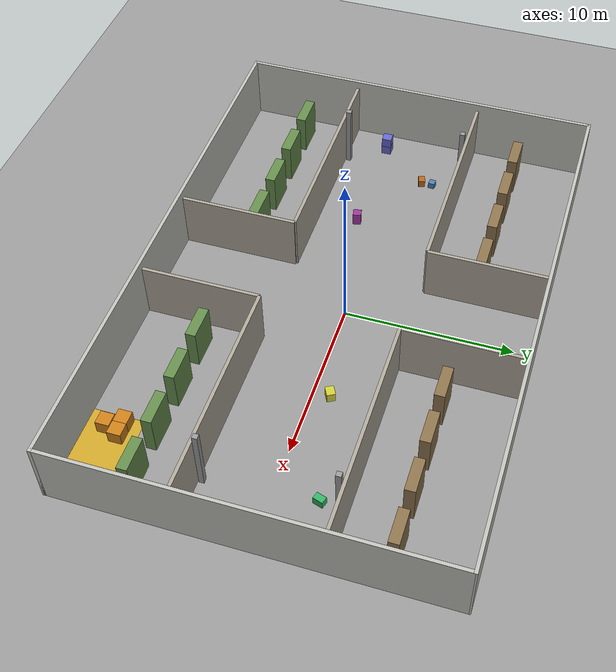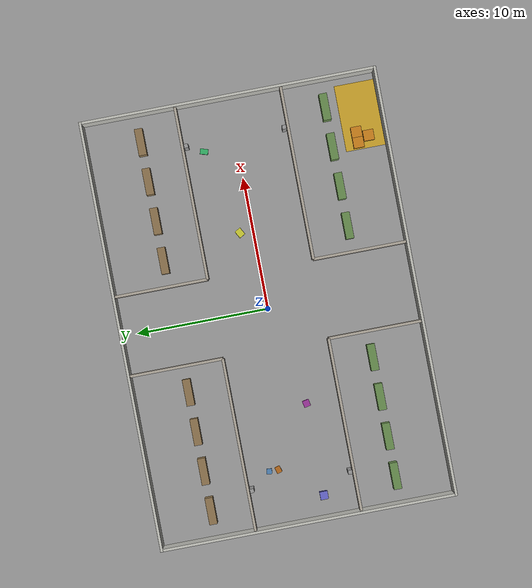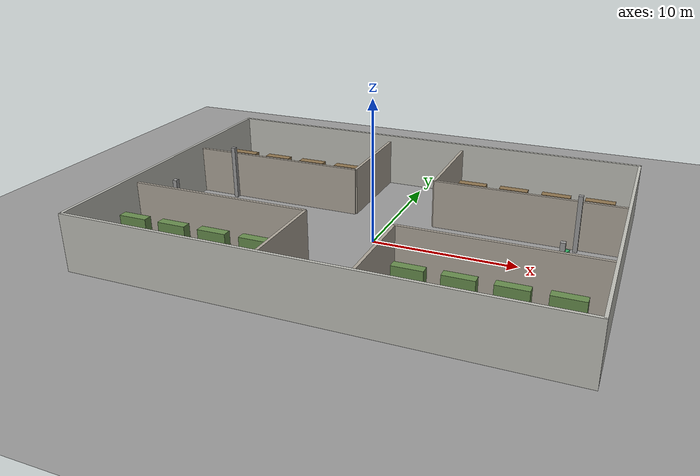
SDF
<?xml version="1.0" ?>
<sdf version="1.9">
  <world name="warehouse">

    <!-- ============================================================
         WORLD PLUGINS
         ============================================================ -->
    <plugin filename="gz-sim-physics-system"
            name="gz::sim::systems::Physics"/>

    <plugin filename="gz-sim-user-commands-system"
            name="gz::sim::systems::UserCommands"/>

    <plugin filename="gz-sim-scene-broadcaster-system"
            name="gz::sim::systems::SceneBroadcaster"/>

    <plugin filename="gz-sim-contact-system"
            name="gz::sim::systems::Contact"/>

    <plugin filename="gz-sim-sensors-system"
            name="gz::sim::systems::Sensors">
      <render_engine>ogre2</render_engine>
    </plugin>

    <plugin filename="gz-sim-imu-system"
            name="gz::sim::systems::Imu"/>

    <plugin filename="gz-sim-navsat-system"
            name="gz::sim::systems::NavSat"/>

    <!-- ============================================================
         PHYSICS CONFIGURATION
         ============================================================ -->
    <physics name="1ms" type="ignored">
      <max_step_size>0.001</max_step_size>
      <real_time_factor>1.0</real_time_factor>
      <real_time_update_rate>1000</real_time_update_rate>
    </physics>

    <!-- ============================================================
         SCENE (lighting and sky)
         ============================================================ -->
    <scene>
      <ambient>0.6 0.6 0.6 1.0</ambient>
      <background>0.4 0.4 0.4 1.0</background>
      <grid>false</grid>
      <origin_visual>false</origin_visual>
    </scene>

    <!-- Main directional light (simulates warehouse fluorescent ceiling) -->
    <light name="ceiling_light_main" type="directional">
      <pose>0 0 15 0 0.3 0</pose>
      <diffuse>0.9 0.9 0.85 1</diffuse>
      <specular>0.3 0.3 0.3 1</specular>
      <direction>0.1 0.1 -1</direction>
      <cast_shadows>false</cast_shadows>
    </light>

    <!-- Ambient fill light -->
    <light name="fill_light" type="directional">
      <pose>0 0 10 0 -0.3 0</pose>
      <diffuse>0.4 0.4 0.4 1</diffuse>
      <specular>0.1 0.1 0.1 1</specular>
      <direction>-0.1 -0.1 -1</direction>
      <cast_shadows>false</cast_shadows>
    </light>

    <!-- ============================================================
         GROUND PLANE (concrete warehouse floor)
         ============================================================ -->
    <model name="ground_plane">
      <static>true</static>
      <link name="link">
        <collision name="collision">
          <geometry>
            <plane>
              <normal>0 0 1</normal>
              <size>50 50</size>
            </plane>
          </geometry>
          <surface>
            <friction>
              <ode>
                <mu>0.8</mu>
                <mu2>0.8</mu2>
              </ode>
            </friction>
          </surface>
        </collision>
        <visual name="visual">
          <geometry>
            <plane>
              <normal>0 0 1</normal>
              <size>50 50</size>
            </plane>
          </geometry>
          <material>
            <ambient>0.5 0.5 0.5 1</ambient>
            <diffuse>0.6 0.6 0.6 1</diffuse>
            <specular>0.1 0.1 0.1 1</specular>
          </material>
        </visual>
      </link>
    </model>

    <!-- NORTH WALL: Y = +11.1 -->
    <model name="wall_north">
      <static>true</static>
      <pose>0 11.1 0 0 0 0</pose>
      <link name="link">
        <collision name="col">
          <geometry><box><size>32.4 0.2 4.0</size></box></geometry>
        </collision>
        <visual name="vis">
          <geometry><box><size>32.4 0.2 4.0</size></box></geometry>
          <material>
            <ambient>0.75 0.75 0.72 1</ambient>
            <diffuse>0.75 0.75 0.72 1</diffuse>
          </material>
          <pose>0 0 2.0 0 0 0</pose>
        </visual>
      </link>
    </model>

    <!-- SOUTH WALL: Y = -11.1 -->
    <model name="wall_south">
      <static>true</static>
      <pose>0 -11.1 0 0 0 0</pose>
      <link name="link">
        <collision name="col">
          <geometry><box><size>32.4 0.2 4.0</size></box></geometry>
        </collision>
        <visual name="vis">
          <geometry><box><size>32.4 0.2 4.0</size></box></geometry>
          <material>
            <ambient>0.75 0.75 0.72 1</ambient>
            <diffuse>0.75 0.75 0.72 1</diffuse>
          </material>
          <pose>0 0 2.0 0 0 0</pose>
        </visual>
      </link>
    </model>

    <!-- WEST WALL: X = -16.1 -->
    <model name="wall_west">
      <static>true</static>
      <pose>-16.1 0 0 0 0 0</pose>
      <link name="link">
        <collision name="col">
          <geometry><box><size>0.2 22.2 4.0</size></box></geometry>
        </collision>
        <visual name="vis">
          <geometry><box><size>0.2 22.2 4.0</size></box></geometry>
          <material>
            <ambient>0.75 0.75 0.72 1</ambient>
            <diffuse>0.75 0.75 0.72 1</diffuse>
          </material>
          <pose>0 0 2.0 0 0 0</pose>
        </visual>
      </link>
    </model>

    <!-- EAST WALL: X = +16.1 -->
    <model name="wall_east">
      <static>true</static>
      <pose>16.1 0 0 0 0 0</pose>
      <link name="link">
        <collision name="col">
          <geometry><box><size>0.2 22.2 4.0</size></box></geometry>
        </collision>
        <visual name="vis">
          <geometry><box><size>0.2 22.2 4.0</size></box></geometry>
          <material>
            <ambient>0.75 0.75 0.72 1</ambient>
            <diffuse>0.75 0.75 0.72 1</diffuse>
          </material>
          <pose>0 0 2.0 0 0 0</pose>
        </visual>
      </link>
    </model>

    <!-- Central dividing wall NORTH (creates main E-W corridor gap) -->
    <!-- Wall segment: West portion X=-16 to X=-3 at Y=+4 -->
    <model name="interior_wall_n1_west">
      <static>true</static>
      <pose>-9.5 4.0 0 0 0 0</pose>
      <link name="link">
        <collision name="col">
          <geometry><box><size>13.0 0.2 3.5</size></box></geometry>
        </collision>
        <visual name="vis">
          <geometry><box><size>13.0 0.2 3.5</size></box></geometry>
          <material><ambient>0.68 0.65 0.60 1</ambient><diffuse>0.68 0.65 0.60 1</diffuse></material>
          <pose>0 0 1.75 0 0 0</pose>
        </visual>
      </link>
    </model>

    <!-- Wall segment: East portion X=+3 to X=+16 at Y=+4 -->
    <model name="interior_wall_n1_east">
      <static>true</static>
      <pose>9.5 4.0 0 0 0 0</pose>
      <link name="link">
        <collision name="col">
          <geometry><box><size>13.0 0.2 3.5</size></box></geometry>
        </collision>
        <visual name="vis">
          <geometry><box><size>13.0 0.2 3.5</size></box></geometry>
          <material><ambient>0.68 0.65 0.60 1</ambient><diffuse>0.68 0.65 0.60 1</diffuse></material>
          <pose>0 0 1.75 0 0 0</pose>
        </visual>
      </link>
    </model>

    <!-- Central dividing wall SOUTH at Y=-4 -->
    <model name="interior_wall_s1_west">
      <static>true</static>
      <pose>-9.5 -4.0 0 0 0 0</pose>
      <link name="link">
        <collision name="col">
          <geometry><box><size>13.0 0.2 3.5</size></box></geometry>
        </collision>
        <visual name="vis">
          <geometry><box><size>13.0 0.2 3.5</size></box></geometry>
          <material><ambient>0.68 0.65 0.60 1</ambient><diffuse>0.68 0.65 0.60 1</diffuse></material>
          <pose>0 0 1.75 0 0 0</pose>
        </visual>
      </link>
    </model>

    <model name="interior_wall_s1_east">
      <static>true</static>
      <pose>9.5 -4.0 0 0 0 0</pose>
      <link name="link">
        <collision name="col">
          <geometry><box><size>13.0 0.2 3.5</size></box></geometry>
        </collision>
        <visual name="vis">
          <geometry><box><size>13.0 0.2 3.5</size></box></geometry>
          <material><ambient>0.68 0.65 0.60 1</ambient><diffuse>0.68 0.65 0.60 1</diffuse></material>
          <pose>0 0 1.75 0 0 0</pose>
        </visual>
      </link>
    </model>

    <!-- North-South cross-corridor wall (creates T-intersection) -->
    <!-- West segment: Y=+4 to Y=+11 at X=-3 (gap for corridor) -->
    <model name="interior_wall_ns1_nw">
      <static>true</static>
      <pose>-3.0 7.5 0 0 0 0</pose>
      <link name="link">
        <collision name="col">
          <geometry><box><size>0.2 7.0 3.5</size></box></geometry>
        </collision>
        <visual name="vis">
          <geometry><box><size>0.2 7.0 3.5</size></box></geometry>
          <material><ambient>0.68 0.65 0.60 1</ambient><diffuse>0.68 0.65 0.60 1</diffuse></material>
          <pose>0 0 1.75 0 0 0</pose>
        </visual>
      </link>
    </model>

    <!-- East segment at X=+3 -->
    <model name="interior_wall_ns1_ne">
      <static>true</static>
      <pose>3.0 7.5 0 0 0 0</pose>
      <link name="link">
        <collision name="col">
          <geometry><box><size>0.2 7.0 3.5</size></box></geometry>
        </collision>
        <visual name="vis">
          <geometry><box><size>0.2 7.0 3.5</size></box></geometry>
          <material><ambient>0.68 0.65 0.60 1</ambient><diffuse>0.68 0.65 0.60 1</diffuse></material>
          <pose>0 0 1.75 0 0 0</pose>
        </visual>
      </link>
    </model>

    <!-- South NS walls -->
    <model name="interior_wall_ns1_sw">
      <static>true</static>
      <pose>-3.0 -7.5 0 0 0 0</pose>
      <link name="link">
        <collision name="col">
          <geometry><box><size>0.2 7.0 3.5</size></box></geometry>
        </collision>
        <visual name="vis">
          <geometry><box><size>0.2 7.0 3.5</size></box></geometry>
          <material><ambient>0.68 0.65 0.60 1</ambient><diffuse>0.68 0.65 0.60 1</diffuse></material>
          <pose>0 0 1.75 0 0 0</pose>
        </visual>
      </link>
    </model>

    <model name="interior_wall_ns1_se">
      <static>true</static>
      <pose>3.0 -7.5 0 0 0 0</pose>
      <link name="link">
        <collision name="col">
          <geometry><box><size>0.2 7.0 3.5</size></box></geometry>
        </collision>
        <visual name="vis">
          <geometry><box><size>0.2 7.0 3.5</size></box></geometry>
          <material><ambient>0.68 0.65 0.60 1</ambient><diffuse>0.68 0.65 0.60 1</diffuse></material>
          <pose>0 0 1.75 0 0 0</pose>
        </visual>
      </link>
    </model>

    <!-- RACK ROW 1: North zone, behind Y=+4 wall -->
    <!-- Rack positions: X = -14, -11, -8, -5 (west section) -->
    <model name="rack_n1">
      <static>true</static>
      <pose>-14.0 7.0 0 0 0 0</pose>
      <link name="link">
        <collision name="col"><geometry><box><size>2.0 0.6 2.5</size></box></geometry></collision>
        <visual name="vis">
          <geometry><box><size>2.0 0.6 2.5</size></box></geometry>
          <material><ambient>0.55 0.45 0.30 1</ambient><diffuse>0.55 0.45 0.30 1</diffuse></material>
          <pose>0 0 1.25 0 0 0</pose>
        </visual>
      </link>
    </model>

    <model name="rack_n2">
      <static>true</static>
      <pose>-11.0 7.0 0 0 0 0</pose>
      <link name="link">
        <collision name="col"><geometry><box><size>2.0 0.6 2.5</size></box></geometry></collision>
        <visual name="vis">
          <geometry><box><size>2.0 0.6 2.5</size></box></geometry>
          <material><ambient>0.55 0.45 0.30 1</ambient><diffuse>0.55 0.45 0.30 1</diffuse></material>
          <pose>0 0 1.25 0 0 0</pose>
        </visual>
      </link>
    </model>

    <model name="rack_n3">
      <static>true</static>
      <pose>-8.0 7.0 0 0 0 0</pose>
      <link name="link">
        <collision name="col"><geometry><box><size>2.0 0.6 2.5</size></box></geometry></collision>
        <visual name="vis">
          <geometry><box><size>2.0 0.6 2.5</size></box></geometry>
          <material><ambient>0.55 0.45 0.30 1</ambient><diffuse>0.55 0.45 0.30 1</diffuse></material>
          <pose>0 0 1.25 0 0 0</pose>
        </visual>
      </link>
    </model>

    <model name="rack_n4">
      <static>true</static>
      <pose>-5.0 7.0 0 0 0 0</pose>
      <link name="link">
        <collision name="col"><geometry><box><size>2.0 0.6 2.5</size></box></geometry></collision>
        <visual name="vis">
          <geometry><box><size>2.0 0.6 2.5</size></box></geometry>
          <material><ambient>0.55 0.45 0.30 1</ambient><diffuse>0.55 0.45 0.30 1</diffuse></material>
          <pose>0 0 1.25 0 0 0</pose>
        </visual>
      </link>
    </model>

    <!-- East section racks (X = +5, +8, +11, +14) -->
    <model name="rack_n5">
      <static>true</static>
      <pose>5.0 7.0 0 0 0 0</pose>
      <link name="link">
        <collision name="col"><geometry><box><size>2.0 0.6 2.5</size></box></geometry></collision>
        <visual name="vis">
          <geometry><box><size>2.0 0.6 2.5</size></box></geometry>
          <material><ambient>0.55 0.45 0.30 1</ambient><diffuse>0.55 0.45 0.30 1</diffuse></material>
          <pose>0 0 1.25 0 0 0</pose>
        </visual>
      </link>
    </model>

    <model name="rack_n6">
      <static>true</static>
      <pose>8.0 7.0 0 0 0 0</pose>
      <link name="link">
        <collision name="col"><geometry><box><size>2.0 0.6 2.5</size></box></geometry></collision>
        <visual name="vis">
          <geometry><box><size>2.0 0.6 2.5</size></box></geometry>
          <material><ambient>0.55 0.45 0.30 1</ambient><diffuse>0.55 0.45 0.30 1</diffuse></material>
          <pose>0 0 1.25 0 0 0</pose>
        </visual>
      </link>
    </model>

    <model name="rack_n7">
      <static>true</static>
      <pose>11.0 7.0 0 0 0 0</pose>
      <link name="link">
        <collision name="col"><geometry><box><size>2.0 0.6 2.5</size></box></geometry></collision>
        <visual name="vis">
          <geometry><box><size>2.0 0.6 2.5</size></box></geometry>
          <material><ambient>0.55 0.45 0.30 1</ambient><diffuse>0.55 0.45 0.30 1</diffuse></material>
          <pose>0 0 1.25 0 0 0</pose>
        </visual>
      </link>
    </model>

    <model name="rack_n8">
      <static>true</static>
      <pose>14.0 7.0 0 0 0 0</pose>
      <link name="link">
        <collision name="col"><geometry><box><size>2.0 0.6 2.5</size></box></geometry></collision>
        <visual name="vis">
          <geometry><box><size>2.0 0.6 2.5</size></box></geometry>
          <material><ambient>0.55 0.45 0.30 1</ambient><diffuse>0.55 0.45 0.30 1</diffuse></material>
          <pose>0 0 1.25 0 0 0</pose>
        </visual>
      </link>
    </model>

    <!-- RACK ROW 2: South zone, behind Y=-4 wall -->
    <model name="rack_s1">
      <static>true</static>
      <pose>-14.0 -7.0 0 0 0 0</pose>
      <link name="link">
        <collision name="col"><geometry><box><size>2.0 0.6 2.5</size></box></geometry></collision>
        <visual name="vis">
          <geometry><box><size>2.0 0.6 2.5</size></box></geometry>
          <material><ambient>0.40 0.55 0.30 1</ambient><diffuse>0.40 0.55 0.30 1</diffuse></material>
          <pose>0 0 1.25 0 0 0</pose>
        </visual>
      </link>
    </model>

    <model name="rack_s2">
      <static>true</static>
      <pose>-11.0 -7.0 0 0 0 0</pose>
      <link name="link">
        <collision name="col"><geometry><box><size>2.0 0.6 2.5</size></box></geometry></collision>
        <visual name="vis">
          <geometry><box><size>2.0 0.6 2.5</size></box></geometry>
          <material><ambient>0.40 0.55 0.30 1</ambient><diffuse>0.40 0.55 0.30 1</diffuse></material>
          <pose>0 0 1.25 0 0 0</pose>
        </visual>
      </link>
    </model>

    <model name="rack_s3">
      <static>true</static>
      <pose>-8.0 -7.0 0 0 0 0</pose>
      <link name="link">
        <collision name="col"><geometry><box><size>2.0 0.6 2.5</size></box></geometry></collision>
        <visual name="vis">
          <geometry><box><size>2.0 0.6 2.5</size></box></geometry>
          <material><ambient>0.40 0.55 0.30 1</ambient><diffuse>0.40 0.55 0.30 1</diffuse></material>
          <pose>0 0 1.25 0 0 0</pose>
        </visual>
      </link>
    </model>

    <model name="rack_s4">
      <static>true</static>
      <pose>-5.0 -7.0 0 0 0 0</pose>
      <link name="link">
        <collision name="col"><geometry><box><size>2.0 0.6 2.5</size></box></geometry></collision>
        <visual name="vis">
          <geometry><box><size>2.0 0.6 2.5</size></box></geometry>
          <material><ambient>0.40 0.55 0.30 1</ambient><diffuse>0.40 0.55 0.30 1</diffuse></material>
          <pose>0 0 1.25 0 0 0</pose>
        </visual>
      </link>
    </model>

    <model name="rack_s5">
      <static>true</static>
      <pose>5.0 -7.0 0 0 0 0</pose>
      <link name="link">
        <collision name="col"><geometry><box><size>2.0 0.6 2.5</size></box></geometry></collision>
        <visual name="vis">
          <geometry><box><size>2.0 0.6 2.5</size></box></geometry>
          <material><ambient>0.40 0.55 0.30 1</ambient><diffuse>0.40 0.55 0.30 1</diffuse></material>
          <pose>0 0 1.25 0 0 0</pose>
        </visual>
      </link>
    </model>

    <model name="rack_s6">
      <static>true</static>
      <pose>8.0 -7.0 0 0 0 0</pose>
      <link name="link">
        <collision name="col"><geometry><box><size>2.0 0.6 2.5</size></box></geometry></collision>
        <visual name="vis">
          <geometry><box><size>2.0 0.6 2.5</size></box></geometry>
          <material><ambient>0.40 0.55 0.30 1</ambient><diffuse>0.40 0.55 0.30 1</diffuse></material>
          <pose>0 0 1.25 0 0 0</pose>
        </visual>
      </link>
    </model>

    <model name="rack_s7">
      <static>true</static>
      <pose>11.0 -7.0 0 0 0 0</pose>
      <link name="link">
        <collision name="col"><geometry><box><size>2.0 0.6 2.5</size></box></geometry></collision>
        <visual name="vis">
          <geometry><box><size>2.0 0.6 2.5</size></box></geometry>
          <material><ambient>0.40 0.55 0.30 1</ambient><diffuse>0.40 0.55 0.30 1</diffuse></material>
          <pose>0 0 1.25 0 0 0</pose>
        </visual>
      </link>
    </model>

    <model name="rack_s8">
      <static>true</static>
      <pose>14.0 -7.0 0 0 0 0</pose>
      <link name="link">
        <collision name="col"><geometry><box><size>2.0 0.6 2.5</size></box></geometry></collision>
        <visual name="vis">
          <geometry><box><size>2.0 0.6 2.5</size></box></geometry>
          <material><ambient>0.40 0.55 0.30 1</ambient><diffuse>0.40 0.55 0.30 1</diffuse></material>
          <pose>0 0 1.25 0 0 0</pose>
        </visual>
      </link>
    </model>

    <model name="loading_zone_marker">
      <static>true</static>
      <pose>13.0 -9.5 0.005 0 0 0</pose>
      <link name="link">
        <visual name="vis">
          <geometry><box><size>5.0 3.0 0.01</size></box></geometry>
          <material>
            <ambient>0.9 0.7 0.1 0.8</ambient>
            <diffuse>0.9 0.7 0.1 0.8</diffuse>
          </material>
        </visual>
      </link>
    </model>

    <!-- Box cluster 1: main corridor -->
    <model name="box_1">
      <static>true</static>
      <pose>-12.0 1.5 0 0 0 0.3</pose>
      <link name="link">
        <collision name="col"><geometry><box><size>0.5 0.4 0.5</size></box></geometry></collision>
        <visual name="vis">
          <geometry><box><size>0.5 0.4 0.5</size></box></geometry>
          <material><ambient>0.7 0.4 0.1 1</ambient><diffuse>0.7 0.4 0.1 1</diffuse></material>
          <pose>0 0 0.25 0 0 0</pose>
        </visual>
      </link>
    </model>

    <model name="box_2">
      <static>true</static>
      <pose>-12.0 2.2 0 0 0 -0.1</pose>
      <link name="link">
        <collision name="col"><geometry><box><size>0.4 0.4 0.4</size></box></geometry></collision>
        <visual name="vis">
          <geometry><box><size>0.4 0.4 0.4</size></box></geometry>
          <material><ambient>0.3 0.5 0.7 1</ambient><diffuse>0.3 0.5 0.7 1</diffuse></material>
          <pose>0 0 0.2 0 0 0</pose>
        </visual>
      </link>
    </model>

    <model name="box_3">
      <static>true</static>
      <pose>6.0 1.0 0 0 0 0.5</pose>
      <link name="link">
        <collision name="col"><geometry><box><size>0.6 0.5 0.6</size></box></geometry></collision>
        <visual name="vis">
          <geometry><box><size>0.6 0.5 0.6</size></box></geometry>
          <material><ambient>0.8 0.8 0.2 1</ambient><diffuse>0.8 0.8 0.2 1</diffuse></material>
          <pose>0 0 0.3 0 0 0</pose>
        </visual>
      </link>
    </model>

    <model name="box_4">
      <static>true</static>
      <pose>-7.5 -1.5 0 0 0 0.2</pose>
      <link name="link">
        <collision name="col"><geometry><box><size>0.5 0.5 0.8</size></box></geometry></collision>
        <visual name="vis">
          <geometry><box><size>0.5 0.5 0.8</size></box></geometry>
          <material><ambient>0.6 0.2 0.6 1</ambient><diffuse>0.6 0.2 0.6 1</diffuse></material>
          <pose>0 0 0.4 0 0 0</pose>
        </visual>
      </link>
    </model>

    <model name="box_5">
      <static>true</static>
      <pose>12.5 2.5 0 0 0 -0.3</pose>
      <link name="link">
        <collision name="col"><geometry><box><size>0.4 0.6 0.5</size></box></geometry></collision>
        <visual name="vis">
          <geometry><box><size>0.4 0.6 0.5</size></box></geometry>
          <material><ambient>0.2 0.7 0.4 1</ambient><diffuse>0.2 0.7 0.4 1</diffuse></material>
          <pose>0 0 0.25 0 0 0</pose>
        </visual>
      </link>
    </model>

    <!-- Box cluster in loading zone -->
    <model name="box_6">
      <static>true</static>
      <pose>11.0 -9.0 0 0 0 0</pose>
      <link name="link">
        <collision name="col"><geometry><box><size>0.8 0.8 0.8</size></box></geometry></collision>
        <visual name="vis">
          <geometry><box><size>0.8 0.8 0.8</size></box></geometry>
          <material><ambient>0.8 0.5 0.1 1</ambient><diffuse>0.8 0.5 0.1 1</diffuse></material>
          <pose>0 0 0.4 0 0 0</pose>
        </visual>
      </link>
    </model>

    <model name="box_7">
      <static>true</static>
      <pose>11.8 -9.0 0 0 0 0</pose>
      <link name="link">
        <collision name="col"><geometry><box><size>0.8 0.8 0.8</size></box></geometry></collision>
        <visual name="vis">
          <geometry><box><size>0.8 0.8 0.8</size></box></geometry>
          <material><ambient>0.8 0.5 0.1 1</ambient><diffuse>0.8 0.5 0.1 1</diffuse></material>
          <pose>0 0 0.4 0 0 0</pose>
        </visual>
      </link>
    </model>

    <model name="box_8">
      <static>true</static>
      <pose>11.4 -9.85 0 0 0 0</pose>
      <link name="link">
        <collision name="col"><geometry><box><size>0.8 0.8 0.8</size></box></geometry></collision>
        <visual name="vis">
          <geometry><box><size>0.8 0.8 0.8</size></box></geometry>
          <material><ambient>0.8 0.5 0.1 1</ambient><diffuse>0.8 0.5 0.1 1</diffuse></material>
          <pose>0 0 0.4 0 0 0</pose>
        </visual>
      </link>
    </model>

    <!-- Stacked boxes (tall stack) -->
    <model name="box_stack_bottom">
      <static>true</static>
      <pose>-14.5 -1.5 0 0 0 0</pose>
      <link name="link">
        <collision name="col"><geometry><box><size>0.6 0.6 0.6</size></box></geometry></collision>
        <visual name="vis">
          <geometry><box><size>0.6 0.6 0.6</size></box></geometry>
          <material><ambient>0.4 0.4 0.8 1</ambient><diffuse>0.4 0.4 0.8 1</diffuse></material>
          <pose>0 0 0.3 0 0 0</pose>
        </visual>
      </link>
    </model>

    <model name="box_stack_top">
      <static>true</static>
      <pose>-14.5 -1.5 0.6 0 0 0</pose>
      <link name="link">
        <collision name="col"><geometry><box><size>0.6 0.6 0.6</size></box></geometry></collision>
        <visual name="vis">
          <geometry><box><size>0.6 0.6 0.6</size></box></geometry>
          <material><ambient>0.4 0.4 0.8 1</ambient><diffuse>0.4 0.4 0.8 1</diffuse></material>
          <pose>0 0 0.3 0 0 0</pose>
        </visual>
      </link>
    </model>

    <model name="pillar_nw">
      <static>true</static>
      <pose>-13.0 3.7 0 0 0 0</pose>
      <link name="link">
        <collision name="col"><geometry><box><size>0.3 0.3 4.0</size></box></geometry></collision>
        <visual name="vis">
          <geometry><box><size>0.3 0.3 4.0</size></box></geometry>
          <material><ambient>0.6 0.6 0.6 1</ambient><diffuse>0.6 0.6 0.6 1</diffuse></material>
          <pose>0 0 2.0 0 0 0</pose>
        </visual>
      </link>
    </model>

    <model name="pillar_ne">
      <static>true</static>
      <pose>13.0 3.7 0 0 0 0</pose>
      <link name="link">
        <collision name="col"><geometry><box><size>0.3 0.3 4.0</size></box></geometry></collision>
        <visual name="vis">
          <geometry><box><size>0.3 0.3 4.0</size></box></geometry>
          <material><ambient>0.6 0.6 0.6 1</ambient><diffuse>0.6 0.6 0.6 1</diffuse></material>
          <pose>0 0 2.0 0 0 0</pose>
        </visual>
      </link>
    </model>

    <model name="pillar_sw">
      <static>true</static>
      <pose>-13.0 -3.7 0 0 0 0</pose>
      <link name="link">
        <collision name="col"><geometry><box><size>0.3 0.3 4.0</size></box></geometry></collision>
        <visual name="vis">
          <geometry><box><size>0.3 0.3 4.0</size></box></geometry>
          <material><ambient>0.6 0.6 0.6 1</ambient><diffuse>0.6 0.6 0.6 1</diffuse></material>
          <pose>0 0 2.0 0 0 0</pose>
        </visual>
      </link>
    </model>

    <model name="pillar_se">
      <static>true</static>
      <pose>13.0 -3.7 0 0 0 0</pose>
      <link name="link">
        <collision name="col"><geometry><box><size>0.3 0.3 4.0</size></box></geometry></collision>
        <visual name="vis">
          <geometry><box><size>0.3 0.3 4.0</size></box></geometry>
          <material><ambient>0.6 0.6 0.6 1</ambient><diffuse>0.6 0.6 0.6 1</diffuse></material>
          <pose>0 0 2.0 0 0 0</pose>
        </visual>
      </link>
    </model>

  </world>
</sdf>
